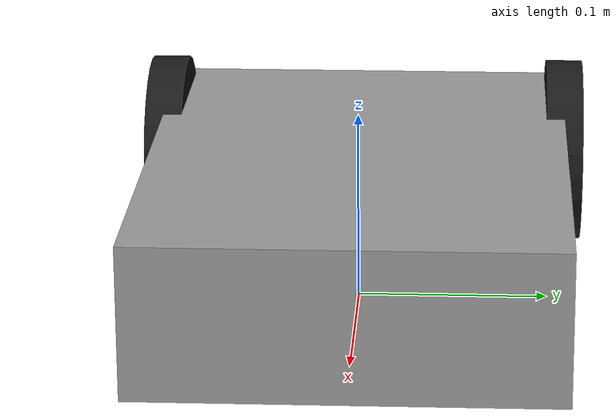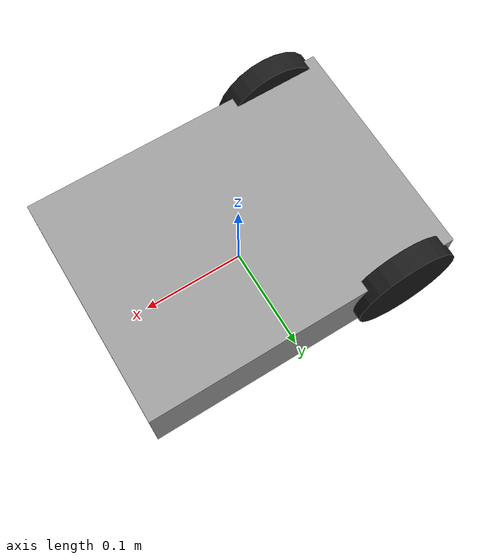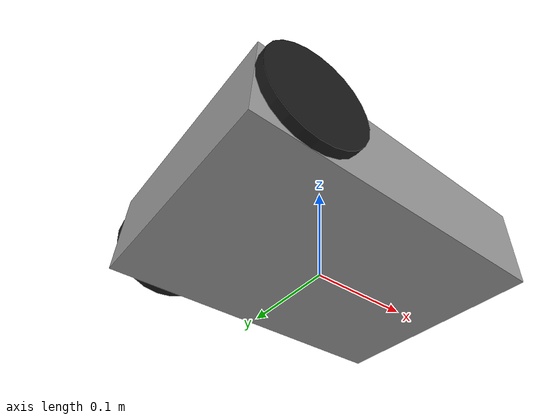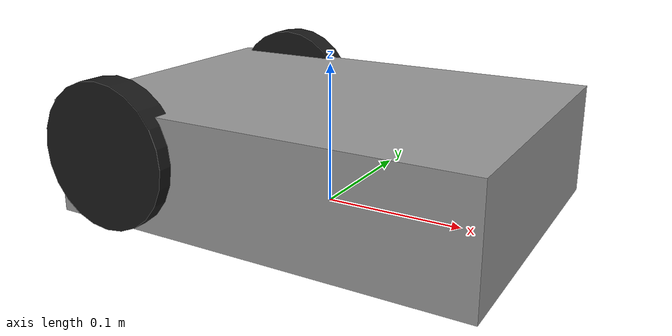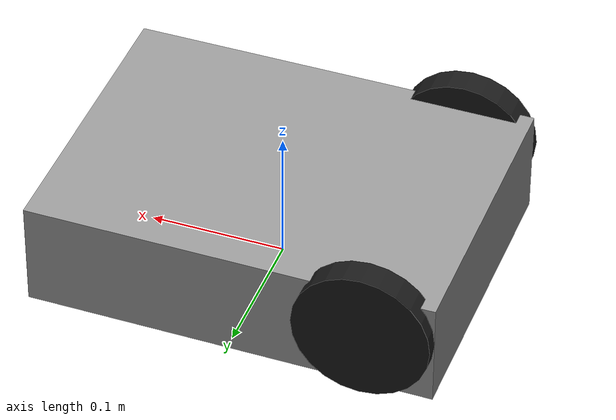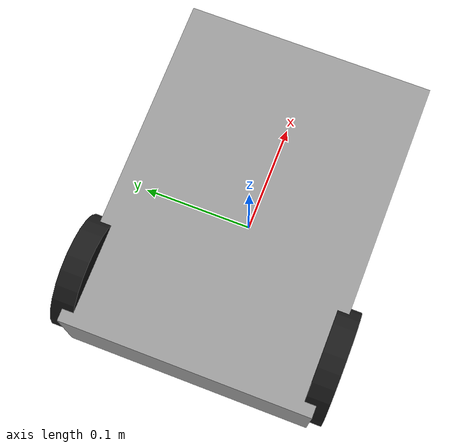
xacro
<?xml version="1.0"?>
<robot name="two_wheel_robot" xmlns:xacro="http://www.ros.org/wiki/xacro">

  <xacro:property name="chassis_x" value="0.30"/>
  <xacro:property name="chassis_y" value="0.22"/>
  <xacro:property name="chassis_z" value="0.08"/>

  <xacro:property name="wheel_radius" value="0.05"/>
  <xacro:property name="wheel_width" value="0.02"/>

  <xacro:property name="wheel_x" value="-0.10"/>
  <xacro:property name="wheel_y" value="0.11"/>

  <material name="gray">
    <color rgba="0.6 0.6 0.6 1"/>
  </material>

  <material name="black">
    <color rgba="0.1 0.1 0.1 1"/>
  </material>

  <link name="world"/>
  <link name="odom"/>
  <link name="base_footprint"/>

  <joint name="world_to_odom" type="fixed">
    <parent link="world"/>
    <child link="odom"/>
    <origin xyz="0 0 0" rpy="0 0 0"/>
  </joint>

  <joint name="odom_to_base_footprint" type="fixed">
    <parent link="odom"/>
    <child link="base_footprint"/>
    <origin xyz="0 0 0" rpy="0 0 0"/>
  </joint>

  <joint name="base_footprint_to_base_link" type="fixed">
    <parent link="base_footprint"/>
    <child link="base_link"/>
    <origin xyz="0 0 0" rpy="0 0 0"/>
  </joint>

  <link name="base_link">
    <visual>
      <origin xyz="0 0 ${chassis_z/2}" rpy="0 0 0"/>
      <geometry>
        <box size="${chassis_x} ${chassis_y} ${chassis_z}"/>
      </geometry>
      <material name="gray"/>
    </visual>

    <collision>
      <origin xyz="0 0 ${chassis_z/2}" rpy="0 0 0"/>
      <geometry>
        <box size="${chassis_x} ${chassis_y} ${chassis_z}"/>
      </geometry>
    </collision>

    <inertial>
      <origin xyz="0 0 ${chassis_z/2}" rpy="0 0 0"/>
      <mass value="2.0"/>
      <inertia ixx="0.02" ixy="0.0" ixz="0.0"
               iyy="0.03" iyz="0.0"
               izz="0.04"/>
    </inertial>
  </link>

  <xacro:macro name="wheel" params="name parent xyz">
    <link name="${name}_link">
      <visual>
        <origin xyz="0 0 0" rpy="${pi/2} 0 0"/>
        <geometry>
          <cylinder radius="${wheel_radius}" length="${wheel_width}"/>
        </geometry>
        <material name="black"/>
      </visual>

      <collision>
        <origin xyz="0 0 0" rpy="${pi/2} 0 0"/>
        <geometry>
          <cylinder radius="${wheel_radius}" length="${wheel_width}"/>
        </geometry>
      </collision>

      <inertial>
        <mass value="0.2"/>
        <inertia ixx="0.0005" ixy="0.0" ixz="0.0"
                 iyy="0.0008" iyz="0.0"
                 izz="0.0005"/>
      </inertial>
    </link>

    <joint name="${name}_joint" type="continuous">
      <parent link="${parent}"/>
      <child link="${name}_link"/>
      <origin xyz="${xyz}" rpy="0 0 0"/>
      <axis xyz="0 1 0"/>
      <dynamics damping="0.1" friction="0.2"/>
    </joint>
  </xacro:macro>

  <xacro:wheel name="left_wheel" parent="base_link"
               xyz="${wheel_x} ${wheel_y} ${wheel_radius}"/>

  <xacro:wheel name="right_wheel" parent="base_link"
               xyz="${wheel_x} -${wheel_y} ${wheel_radius}"/>

</robot>
